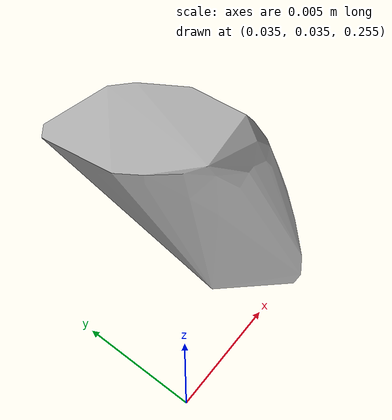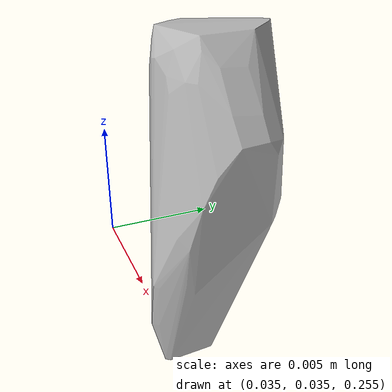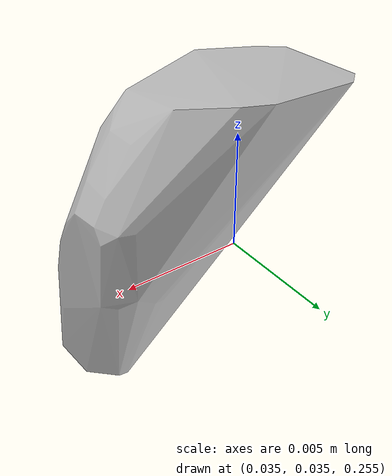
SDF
<?xml version="1.0"?>
<sdf version="1.7">
  <model name="vascular_partexport029">
    <link name="vascular_partexport029_body">
      <visual name="vascular_partexport029_visual">
        <geometry>
          <mesh>
            <uri>vascular_partexport029.obj</uri>
          </mesh>
        </geometry>
      </visual>
      <collision name="vascular_partexport029_collision">
        <geometry>
          <mesh>
            <uri>vascular_partexport029.obj</uri>
          </mesh>
        </geometry>
      </collision>
    </link>
    <frame name="vascular_partexport029_center">
      <pose relative_to="vascular_partexport029_body">0 0 0 0 0 0</pose>
    </frame>
  </model>
</sdf>
